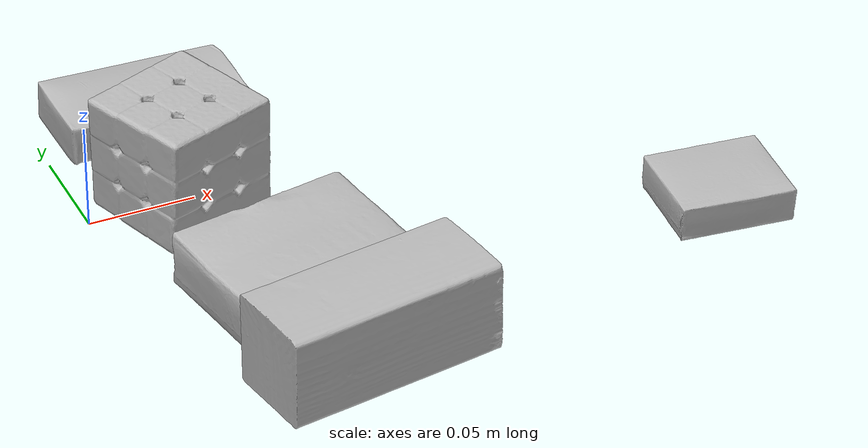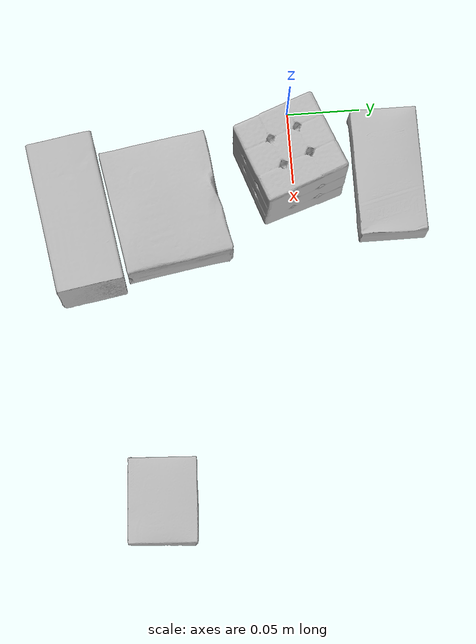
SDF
<sdf version="1.4">
  <world name="default">
    <light name="light1" type="point">
      <pose>0 0 1 0 0 0</pose>
      <diffuse>3 3 3 1</diffuse>
      <specular>3 3 3 1</specular>
    </light>
    <light name="light2" type="point">
      <pose>0 0.5 2 0 0 0</pose>
      <diffuse>1 1 1 1</diffuse>
      <specular>1 1 1 1</specular>
    </light>
    <light name="light3" type="point">
      <pose>0 0.5 2 0 0 0</pose>
      <diffuse>3 3 3 1</diffuse>
      <specular>3 3 3 1</specular>
    </light>
    <scene>
      <ambient>0.7 0.7 0.7</ambient>
    </scene>
    <model name="box1">
      <link name="link_box1">
        <collision name="default">
          <geometry>
            <mesh>
              <uri>model://gelatin_box/collision_meshes/collision.obj</uri>
              <scale>1.0 1.0 1.0</scale>
            </mesh>
          </geometry>
          <surface>
            <friction>
              <ode>
                <mu>0.5</mu>
                <mu2>0.5</mu2>
              </ode>
            </friction>
          <contact>
        <ode>
            <max_vel>0</max_vel>
            <min_depth>0.0001</min_depth>
            <kp>1e8</kp>
        </ode>
    </contact></surface>
        </collision>
        <visual name="default">
          <geometry>
            <mesh>
              <uri>model://gelatin_box/visual_meshes/visual.dae</uri>
              <scale>1.0 1.0 1.0</scale>
            </mesh>
          </geometry>
        </visual>
        <inertial>
          <mass>0.15228882431983948</mass>
          <pose>0.0004319618456065655 0.00011156871914863586 -0.0003640321083366871 -0.00105037218966889 -0.004755816826754503 0.0164405576082189</pose>
          <inertia>
            <ixx>0.00010750349</ixx>
            <iyy>7.678918e-05</iyy>
            <izz>0.00016364428</izz>
            <ixy>0</ixy>
            <ixz>0</ixz>
            <iyz>0</iyz>
          </inertia>
        </inertial>
      </link>
      <pose>0.06545400619506836 -0.08694864064455032 0.015168314799666405 0.005597207266835609 -0.007304229966141369 1.7292996802281508</pose>
    </model>
    <model name="box2">
      <link name="link_box2">
        <collision name="default">
          <geometry>
            <mesh>
              <uri>model://rubiks_cube/collision_meshes/collision.obj</uri>
              <scale>1.0 1.0 1.0</scale>
            </mesh>
          </geometry>
          <surface>
            <friction>
              <ode>
                <mu>0.5</mu>
                <mu2>0.5</mu2>
              </ode>
            </friction>
          <contact>
        <ode>
            <max_vel>0</max_vel>
            <min_depth>0.0001</min_depth>
            <kp>1e8</kp>
        </ode>
    </contact></surface>
        </collision>
        <visual name="default">
          <geometry>
            <mesh>
              <uri>model://rubiks_cube/visual_meshes/visual.dae</uri>
              <scale>1.0 1.0 1.0</scale>
            </mesh>
          </geometry>
        </visual>
        <inertial>
          <mass>0.18699690699577332</mass>
          <pose>2.6721041649580002e-05 5.2569666877388954e-05 -7.264316082000732e-06 -0.054672785544912415 -0.09814058570479768 -0.03445363054661819</pose>
          <inertia>
            <ixx>0.00010332834</ixx>
            <iyy>0.00010284647</iyy>
            <izz>0.000104184575</izz>
            <ixy>0</ixy>
            <ixz>0</ixz>
            <iyz>0</iyz>
          </inertia>
        </inertial>
      </link>
      <pose>0.04294242337346077 -0.0035241488367319107 0.028678985312581062 -2.124731580082859e-06 -2.633036369243899e-07 1.9326167624350437</pose>
    </model>
    <model name="box3">
      <link name="link_box3">
        <collision name="default">
          <geometry>
            <mesh>
              <uri>model://pudding_box/collision_meshes/collision.obj</uri>
              <scale>0.5 0.5 0.5</scale>
            </mesh>
          </geometry>
          <surface>
            <friction>
              <ode>
                <mu>0.5</mu>
                <mu2>0.5</mu2>
              </ode>
            </friction>
          <contact>
        <ode>
            <max_vel>0</max_vel>
            <min_depth>0.0001</min_depth>
            <kp>1e8</kp>
        </ode>
    </contact></surface>
        </collision>
        <visual name="default">
          <geometry>
            <mesh>
              <uri>model://pudding_box/visual_meshes/visual.dae</uri>
              <scale>0.5 0.5 0.5</scale>
            </mesh>
          </geometry>
        </visual>
        <inertial>
          <mass>0.04129739850759506</mass>
          <pose>0.00024474109522998333 0.00040339428232982755 -0.0002594413817860186 0.005213100432551209 -0.006603796827212886 0.020079819580048088</pose>
          <inertia>
            <ixx>1.1671145e-05</ixx>
            <iyy>7.852431e-06</iyy>
            <izz>1.7235501e-05</izz>
            <ixy>0</ixy>
            <ixz>0</ixz>
            <iyz>0</iyz>
          </inertia>
        </inertial>
      </link>
      <pose>0.2598060965538025 -0.10139081627130508 0.009862903505563736 0.02234856768629692 -0.011391699214670007 1.5129509594560901</pose>
    </model>
    <model name="box4">
      <link name="link_box4">
        <collision name="default">
          <geometry>
            <mesh>
              <uri>model://sugar_box/collision_meshes/collision.obj</uri>
              <scale>0.5 0.5 0.5</scale>
            </mesh>
          </geometry>
          <surface>
            <friction>
              <ode>
                <mu>0.5</mu>
                <mu2>0.5</mu2>
              </ode>
            </friction>
          <contact>
        <ode>
            <max_vel>0</max_vel>
            <min_depth>0.0001</min_depth>
            <kp>1e8</kp>
        </ode>
    </contact></surface>
        </collision>
        <visual name="default">
          <geometry>
            <mesh>
              <uri>model://sugar_box/visual_meshes/visual.dae</uri>
              <scale>0.5 0.5 0.5</scale>
            </mesh>
          </geometry>
        </visual>
        <inertial>
          <mass>0.09136254340410233</mass>
          <pose>0.0005171863595023751 1.924554817378521e-05 -0.00018182402709499002 -0.00040462606744182556 0.0010506635219056535 0.0026153790218759383</pose>
          <inertia>
            <ixx>1.9030753e-05</ixx>
            <iyy>6.15113e-05</iyy>
            <izz>7.363638e-05</izz>
            <ixy>0</ixy>
            <ixz>0</ixz>
            <iyz>0</iyz>
          </inertia>
        </inertial>
      </link>
      <pose>0.051793430000543594 0.06334500759840012 0.011399304494261742 0.0007745205108942464 -0.0234330038298552 3.1382366695058197</pose>
    </model>
    <model name="box5">
      <link name="link_box5">
        <collision name="default">
          <geometry>
            <mesh>
              <uri>model://wood_block/collision_meshes/collision.obj</uri>
              <scale>0.5 0.5 0.5</scale>
            </mesh>
          </geometry>
          <surface>
            <friction>
              <ode>
                <mu>0.5</mu>
                <mu2>0.5</mu2>
              </ode>
            </friction>
          <contact>
        <ode>
            <max_vel>0</max_vel>
            <min_depth>0.0001</min_depth>
            <kp>1e8</kp>
        </ode>
    </contact></surface>
        </collision>
        <visual name="default">
          <geometry>
            <mesh>
              <uri>model://wood_block/visual_meshes/visual.dae</uri>
              <scale>0.5 0.5 0.5</scale>
            </mesh>
          </geometry>
        </visual>
        <inertial>
          <mass>0.2591090798377991</mass>
          <pose>-2.9066577553749084e-06 -0.00028540470520965755 0.00013204290007706732 -0.05220937491622274 -0.005192696068464721 -0.006861378365732138</pose>
          <inertia>
            <ixx>8.6681786e-05</ixx>
            <iyy>0.00027382775</iyy>
            <izz>0.0002728035</izz>
            <ixy>0</ixy>
            <ixz>0</ixz>
            <iyz>0</iyz>
          </inertia>
        </inertial>
      </link>
      <pose>0.07271086424589157 -0.14600269496440887 0.0226292684674263 -0.005208517922922132 0.005718734551556253 0.1654830681797223</pose>
    </model>
  <physics type="ode">
      <max_contacts>50</max_contacts>
      <ode>
        <solver>
          <type>quick</type>
          <iters>75</iters>
        </solver>
        <constraints>
          <contact_max_correcting_vel>0</contact_max_correcting_vel>
          <contact_surface_layer>0</contact_surface_layer>
        </constraints>
      </ode>
    </physics></world>
</sdf>
